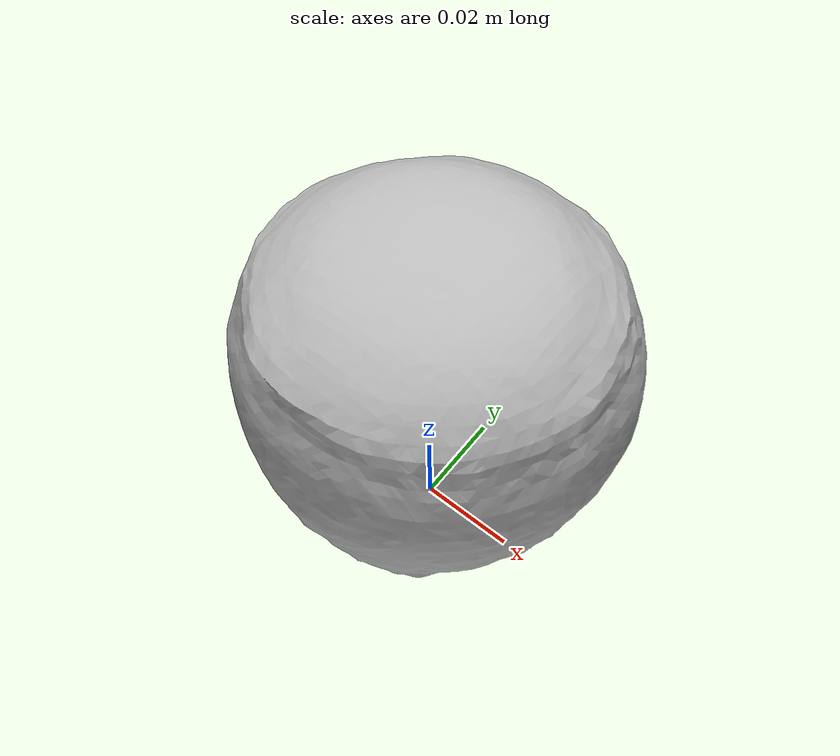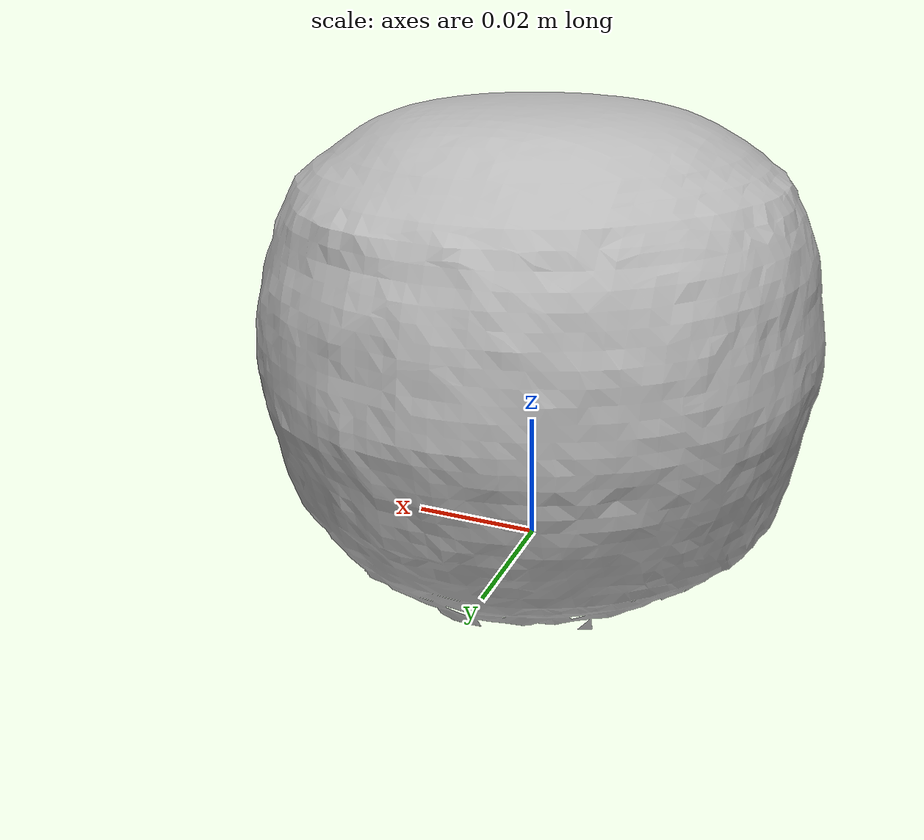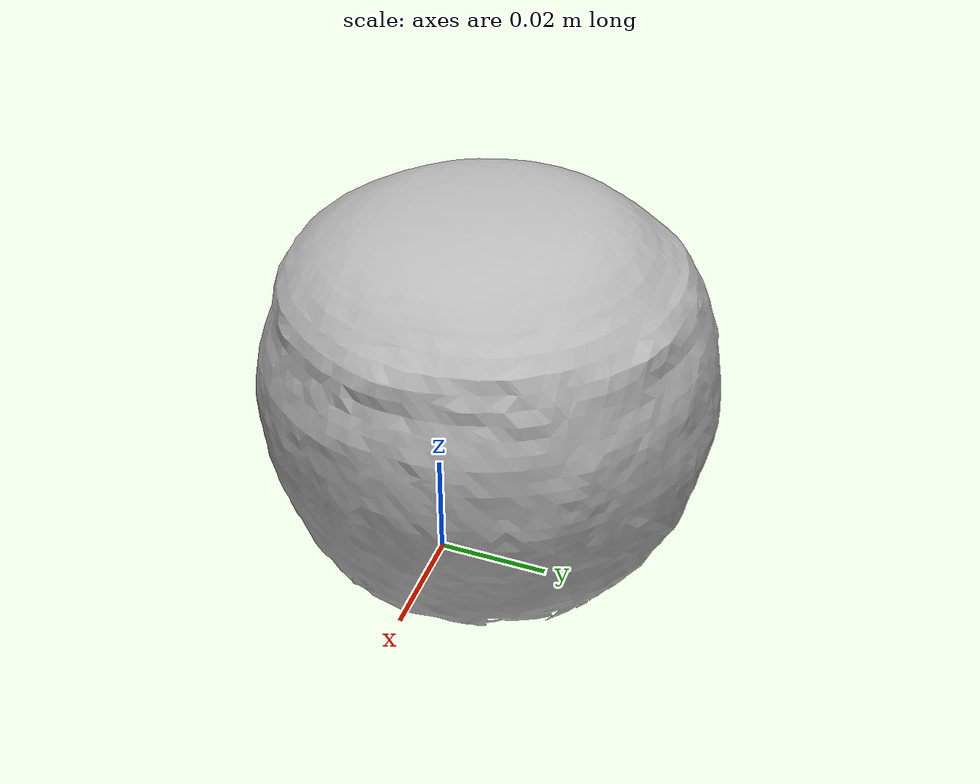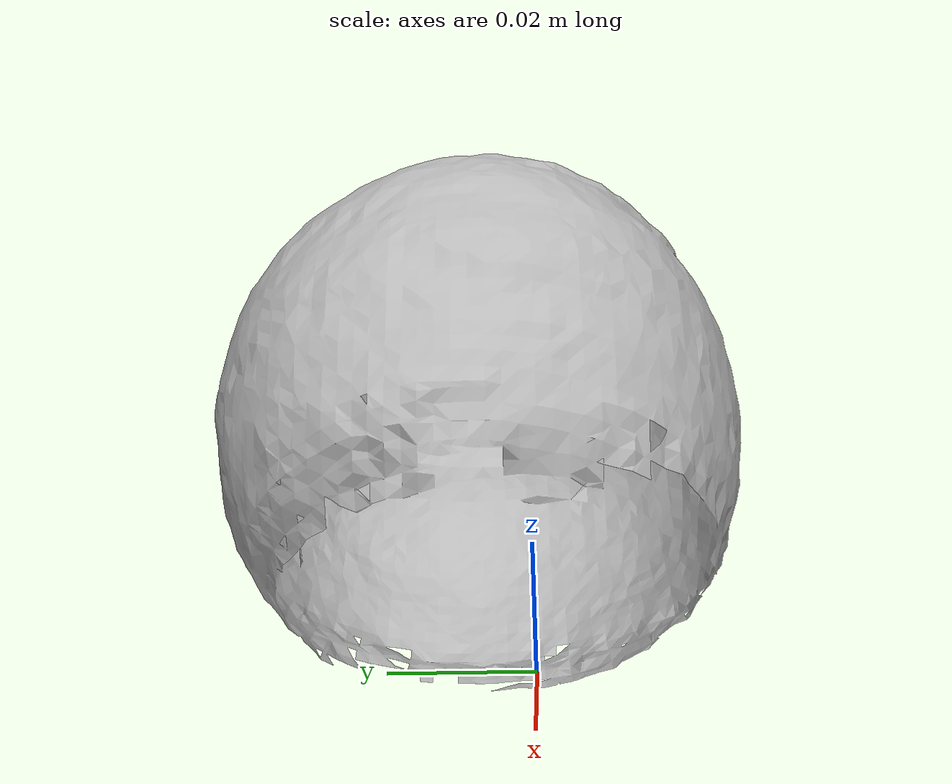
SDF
<?xml version="1.0" ?>
<sdf version="1.4">
  <model name="017_orange">
    <pose>0 0 0  0 0 0</pose>
    <link name="body">
      <inertial>
        <!-- Volume:  2.2069624300e-04 -->
        <mass> 1.0 </mass>
        <!-- Center of mass: -5.7098500000e-03  7.0769800000e-03  3.8070980000e-02 -->
        <pose> -5.7098500000e-03  7.0769800000e-03  3.8070980000e-02 0 0 0 </pose>
        <!-- Inertia matrix -->
        <inertia>
          <ixx>  5.4294746105e-04 </ixx>
          <ixy> -1.8676788259e-06 </ixy>
          <ixz>  2.1894083625e-06 </ixz>
          <iyy>  5.5508351449e-04 </iyy>
          <iyz> -3.9016477503e-06 </iyz>
          <izz>  6.0148534835e-04 </izz>
        </inertia>
      </inertial>
      <visual name="visual">
        <geometry>
          <mesh>
            <uri>model://017_orange/nontextured.stl</uri>
          </mesh>
        </geometry>
      </visual>
      <collision name="collision">
        <geometry>
          <mesh>
            <uri>model://017_orange/nontextured.stl</uri>
          </mesh>
        </geometry>
        <max_contacts>10</max_contacts>
        <surface>
          <friction>
            <ode>
              <mu>0.8</mu>
              <mu2>0.8</mu2>
              <slip1>0</slip1>
              <slip2>0</slip2>
            </ode>
            <torsional>
              <ode/>
            </torsional>
          </friction>
          <contact>
            <ode>
              <kp>1000000.0</kp>
              <kd>1.0</kd>
              <max_vel>0.0</max_vel>
            </ode>
          </contact>
        </surface>
      </collision>
    </link>
  </model>
</sdf>
